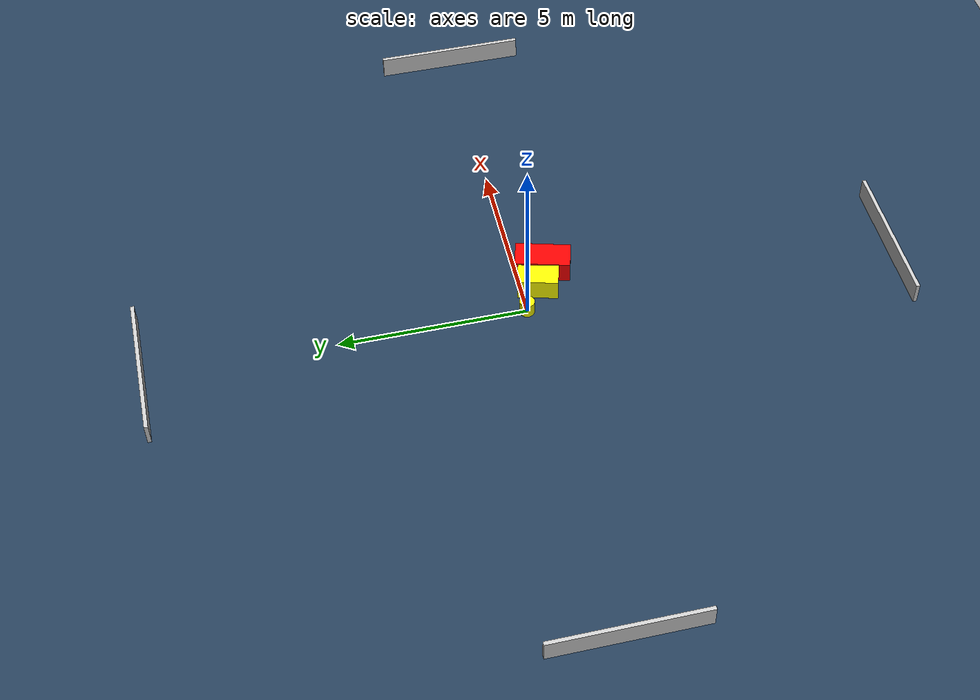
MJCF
<?xml version="1.0" ?>
<mujoco model="generated_environment">
  <option timestep="0.01" integrator="RK4" cone="elliptic"/>
  <default>
    <geom density="1"/>
  </default>
  <asset>
    <texture builtin="gradient" height="3072" name="skybox" rgb1="0.3 0.5 0.7" rgb2="0 0 0" type="skybox" width="512"/>
    <texture builtin="checker" height="300" name="groundplane" rgb1="0.2 0.3 0.4" rgb2="0.1 0.2 0.3" type="2d" width="300"/>
    <material name="groundplane" reflectance="0.2" texrepeat="5 5" texture="groundplane"/>
  </asset>
  <worldbody>
    <light dir="0 0 -1" directional="true" pos="0 0 1.5"/>
    <geom condim="3" friction="0.5 0.005 0.001" material="groundplane" name="floor" pos="0 0 0" size="0 0 0.05" type="plane"/>
    <body name="walls">
      <geom name="wall_1" condim="4" pos="-10.0 0.0 0.3" rgba="0.800000011920929 0.800000011920929 0.800000011920929 1.0" size="0.05 2.0 0.3" type="box"/>
      <geom name="wall_2" condim="4" pos="10.0 0.0 0.3" rgba="0.800000011920929 0.800000011920929 0.800000011920929 1.0" size="0.05 2.0 0.3" type="box"/>
      <geom name="wall_3" condim="4" pos="0.0 -10.0 0.3" rgba="0.800000011920929 0.800000011920929 0.800000011920929 1.0" size="2.0 0.05 0.3" type="box"/>
      <geom name="wall_4" condim="4" pos="0.0 10.0 0.3" rgba="0.800000011920929 0.800000011920929 0.800000011920929 1.0" size="2.0 0.05 0.3" type="box"/>
    </body>
    <body name="robot">
      <joint name="joint_x" type="slide" pos="0 0 0" axis="1 0 0"/>
      <joint name="joint_y" type="slide" pos="0 0 0" axis="0 1 0"/>
      <geom name="robot" type="cylinder" pos="0.0 0.0 0.2" size="0.2 0.2 0.0" mass="5.0" friction="1.0 0.005 0.0001" condim="4" rgba="1.0 1.0 0.0 1.0"/>
    </body>
    <body name="obstacle_1_movable">
      <geom name="obstacle_1_movable" condim="4" pos="0.6911045001828339 -0.456880729883453 0.3" euler="0 0 165.55534336810229" friction="0.0 0.005 0.001" rgba="1.0 1.0 0.0 1.0" size="0.31042778136370197 0.5373327552440611 0.3" type="box" mass="0.1"/>
      <joint type="free"/>
    </body>
    <body name="obstacle_2_static">
      <geom name="obstacle_2_static" condim="4" pos="1.3508803719348064 -0.7403915520870904 0.3" euler="0 0 74.20276001187577" friction="0.0 0.005 0.001" rgba="1.0 0.0 0.0 1.0" size="0.7370351982193266 0.36912378897177955 0.3" type="box"/>
    </body>
  </worldbody>
  <actuator>
    <motor name="actuator_x" joint="joint_x" gear="1" ctrlrange="-1 1"/>
    <motor name="actuator_y" joint="joint_y" gear="1" ctrlrange="-1 1"/>
  </actuator>
</mujoco>
